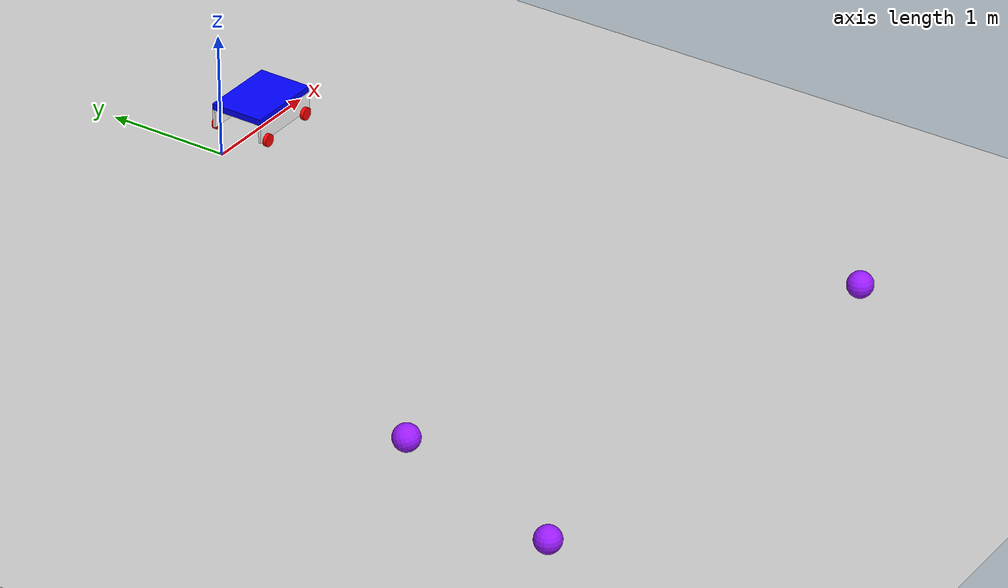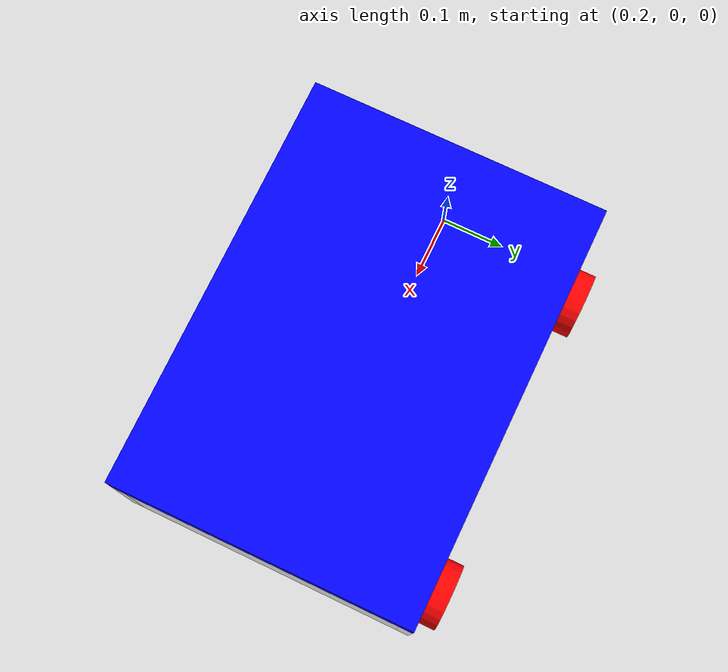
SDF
<sdf version="1.8">
 <world name="assess">
  <scene><ambient>1 1 1 1</ambient><background>0.8 0.8 0.8 1</background><shadows>1</shadows></scene>
  <light name="sun" type="directional">
   <cast_shadows>0</cast_shadows>
   <pose>0 4 2 0 -0 0</pose>
   <diffuse>0.8 0.8 0.8 1</diffuse>
   <specular>0.2 0.2 0.2 1</specular>
   <attenuation>
    <range>1000</range>
    <constant>0.90000000000000002</constant>
    <linear>0.01</linear>
    <quadratic>0.001</quadratic>
   </attenuation>
   <direction>-0.5 0.1 -0.9</direction>
   <spot><inner_angle>0</inner_angle><outer_angle>0</outer_angle><falloff>0</falloff></spot>
  </light>
  <gravity>0 0 -9.8</gravity>
  <magnetic_field>6e-06 2.3e-05 -4.2e-05</magnetic_field>
  <atmosphere type="adiabatic"/>
  <physics type="ode">
   <max_step_size>0.001</max_step_size>
   <real_time_factor>1</real_time_factor>
   <real_time_update_rate>1000</real_time_update_rate>
  </physics>
  <model name="ground_plane">
   <static>1</static>
   <link name="link">
    <collision name="collision">
     <geometry><plane><normal>0 0 1</normal><size>100 100</size></plane></geometry>
    </collision>
    <visual name="visual">
     <geometry><plane><normal>0 0 1</normal><size>100 100</size></plane></geometry>
     <material>
      <ambient>0.8 0.8 0.8 1</ambient>
      <diffuse>0.8 0.8 0.8 1</diffuse>
      <specular>0.8 0.8 0.8 1</specular>
     </material>
    </visual>
   </link>
  </model>
  <model name="sphere">
   <pose>0.932485 -4.91872 0.1 0 -0 0</pose>
   <link name="sphere_link">
    <inertial>
     <inertia>
      <ixx>0.0040000000000000001</ixx>
      <ixy>0</ixy>
      <ixz>0</ixz>
      <iyy>0.0040000000000000001</iyy>
      <iyz>0</iyz>
      <izz>0.0040000000000000001</izz>
     </inertia>
     <mass>1</mass>
    </inertial>
    <collision name="sphere_collision">
     <geometry><sphere><radius>0.10000000000000001</radius></sphere></geometry>
    </collision>
    <visual name="sphere_visual">
     <geometry><sphere><radius>0.10000000000000001</radius></sphere></geometry>
     <material>
      <ambient>0.6 0.1 1 1</ambient>
      <diffuse>0.6 0.1 1 1</diffuse>
      <specular>0.6 0.1 1 1</specular>
     </material>
    </visual>
   </link>
  </model>
  <model name="sphere_0">
   <pose>-2.91501 -4.80288 0.099999 0 -0 0</pose>
   <link name="sphere_link">
    <inertial>
     <inertia>
      <ixx>0.0040000000000000001</ixx>
      <ixy>0</ixy>
      <ixz>0</ixz>
      <iyy>0.0040000000000000001</iyy>
      <iyz>0</iyz>
      <izz>0.0040000000000000001</izz>
     </inertia>
     <mass>1</mass>
    </inertial>
    <collision name="sphere_collision">
     <geometry><sphere><radius>0.10000000000000001</radius></sphere></geometry>
    </collision>
    <visual name="sphere_visual">
     <geometry><sphere><radius>0.10000000000000001</radius></sphere></geometry>
     <material>
      <ambient>0.6 0.1 1 1</ambient>
      <diffuse>0.6 0.1 1 1</diffuse>
      <specular>0.6 0.1 1 1</specular>
     </material>
    </visual>
   </link>
  </model>
  <model name="sphere_1">
   <pose>-2.90308 -3.67776 0.469999 -0.354352 0 0</pose>
   <link name="sphere_link">
    <inertial>
     <inertia>
      <ixx>0.0040000000000000001</ixx>
      <ixy>0</ixy>
      <ixz>0</ixz>
      <iyy>0.0040000000000000001</iyy>
      <iyz>0</iyz>
      <izz>0.0040000000000000001</izz>
     </inertia>
     <mass>1</mass>
    </inertial>
    <collision name="sphere_collision">
     <geometry><sphere><radius>0.10000000000000001</radius></sphere></geometry>
    </collision>
    <visual name="sphere_visual">
     <geometry><sphere><radius>0.10000000000000001</radius></sphere></geometry>
     <material>
      <ambient>0.6 0.1 1 1</ambient>
      <diffuse>0.6 0.1 1 1</diffuse>
      <specular>0.6 0.1 1 1</specular>
     </material>
    </visual>
   </link>
  </model>
  <model name="vehicle_blue" canonical_link="chassis">
   <pose relative_to="world">0 0 0 0 0 0</pose>
   <link name="chassis">
    <pose relative_to="__model__">0.5 0 0.25 0 0 0</pose>
    <inertial>
     <mass>1.14395</mass>
     <inertia>
      <ixx>0.095329</ixx>
      <ixy>0</ixy>
      <ixz>0</ixz>
      <iyy>0.381317</iyy>
      <iyz>0</iyz>
      <izz>0.476646</izz>
     </inertia>
    </inertial>
    <visual name="visual">
     <geometry><box><size>0.62 0.44 0.05</size></box></geometry>
     <material>
      <ambient>0.0 0.0 1.0 1</ambient>
      <diffuse>0.0 0.0 1.0 1</diffuse>
      <specular>0.0 0.0 1.0 1</specular>
     </material>
    </visual>
    <collision name="collision"><geometry><box><size>0.62 0.44 0.05</size></box></geometry></collision>
   </link>
   <link name="left_side">
    <pose relative_to="chassis">0 -0.21 -0.10 0 0 0</pose>
    <inertial>
     <mass>1.14395</mass>
     <inertia>
      <ixx>0.095329</ixx>
      <ixy>0</ixy>
      <ixz>0</ixz>
      <iyy>0.381317</iyy>
      <iyz>0</iyz>
      <izz>0.476646</izz>
     </inertia>
    </inertial>
    <visual name="visual">
     <geometry><box><size>0.62 0.02 0.15</size></box></geometry>
     <material>
      <ambient>1.0 1.0 1.0 1</ambient>
      <diffuse>1.0 1.0 1.0 1</diffuse>
      <specular>1.0 1.0 1.0 1</specular>
     </material>
    </visual>
    <collision name="collision"><geometry><box><size>0.62 0.02 0.15</size></box></geometry></collision>
   </link>
   <link name="right_side">
    <pose relative_to="chassis">0 0.21 -0.10 0 0 0</pose>
    <inertial>
     <mass>1.14395</mass>
     <inertia>
      <ixx>0.095329</ixx>
      <ixy>0</ixy>
      <ixz>0</ixz>
      <iyy>0.381317</iyy>
      <iyz>0</iyz>
      <izz>0.476646</izz>
     </inertia>
    </inertial>
    <visual name="visual">
     <geometry><box><size>0.62 0.02 0.15</size></box></geometry>
     <material>
      <ambient>1.0 1.0 1.0 1</ambient>
      <diffuse>1.0 1.0 1.0 1</diffuse>
      <specular>1.0 1.0 1.0 1</specular>
     </material>
    </visual>
    <collision name="collision"><geometry><box><size>0.62 0.02 0.15</size></box></geometry></collision>
   </link>
   <link name="back_side">
    <pose relative_to="chassis">0.3 0 -0.10 0 0 0</pose>
    <inertial>
     <mass>1.14395</mass>
     <inertia>
      <ixx>0.095329</ixx>
      <ixy>0</ixy>
      <ixz>0</ixz>
      <iyy>0.381317</iyy>
      <iyz>0</iyz>
      <izz>0.476646</izz>
     </inertia>
    </inertial>
    <visual name="visual">
     <geometry><box><size>0.02 0.4 0.15</size></box></geometry>
     <material>
      <ambient>1.0 1.0 1.0 1</ambient>
      <diffuse>1.0 1.0 1.0 1</diffuse>
      <specular>1.0 1.0 1.0 1</specular>
     </material>
    </visual>
    <collision name="collision"><geometry><box><size>0.02 0.4 0.15</size></box></geometry></collision>
   </link>
   <link name="leftb_wheel">
    <pose relative_to="left_side">-0.2375 -0.025 -0.075 -1.5707 0 0</pose>
    <inertial>
     <mass>1</mass>
     <inertia><ixx>0.043333</ixx><ixy>0</ixy><ixz>0</ixz><iyy>0.043333</iyy><iyz>0</iyz><izz>0.08</izz></inertia>
    </inertial>
    <visual name="visual">
     <geometry><cylinder><radius>0.05</radius><length>0.03</length></cylinder></geometry>
     <material>
      <ambient>1.0 0.0 0.0 1</ambient>
      <diffuse>1.0 0.0 0.0 1</diffuse>
      <specular>1.0 0.0 0.0 1</specular>
     </material>
    </visual>
    <collision name="collision">
     <geometry><cylinder><radius>0.05</radius><length>0.03</length></cylinder></geometry>
    </collision>
   </link>
   <link name="leftf_wheel">
    <pose relative_to="left_side">0.2375 -0.025 -0.075 -1.5707 0 0</pose>
    <inertial>
     <mass>1</mass>
     <inertia><ixx>0.043333</ixx><ixy>0</ixy><ixz>0</ixz><iyy>0.043333</iyy><iyz>0</iyz><izz>0.08</izz></inertia>
    </inertial>
    <visual name="visual">
     <geometry><cylinder><radius>0.05</radius><length>0.03</length></cylinder></geometry>
     <material>
      <ambient>1.0 0.0 0.0 1</ambient>
      <diffuse>1.0 0.0 0.0 1</diffuse>
      <specular>1.0 0.0 0.0 1</specular>
     </material>
    </visual>
    <collision name="collision">
     <geometry><cylinder><radius>0.05</radius><length>0.03</length></cylinder></geometry>
    </collision>
   </link>
   <link name="rightb_wheel">
    <pose relative_to="right_side">-0.2375 0.025 -0.075 -1.5707 0 0</pose>
    <inertial>
     <mass>1</mass>
     <inertia><ixx>0.043333</ixx><ixy>0</ixy><ixz>0</ixz><iyy>0.043333</iyy><iyz>0</iyz><izz>0.08</izz></inertia>
    </inertial>
    <visual name="visual">
     <geometry><cylinder><radius>0.05</radius><length>0.03</length></cylinder></geometry>
     <material>
      <ambient>1.0 0.0 0.0 1</ambient>
      <diffuse>1.0 0.0 0.0 1</diffuse>
      <specular>1.0 0.0 0.0 1</specular>
     </material>
    </visual>
    <collision name="collision">
     <geometry><cylinder><radius>0.05</radius><length>0.03</length></cylinder></geometry>
    </collision>
   </link>
   <link name="rightf_wheel">
    <pose relative_to="right_side">0.2375 0.025 -0.075 -1.5707 0 0</pose>
    <inertial>
     <mass>1</mass>
     <inertia><ixx>0.043333</ixx><ixy>0</ixy><ixz>0</ixz><iyy>0.043333</iyy><iyz>0</iyz><izz>0.08</izz></inertia>
    </inertial>
    <visual name="visual">
     <geometry><cylinder><radius>0.05</radius><length>0.03</length></cylinder></geometry>
     <material>
      <ambient>1.0 0.0 0.0 1</ambient>
      <diffuse>1.0 0.0 0.0 1</diffuse>
      <specular>1.0 0.0 0.0 1</specular>
     </material>
    </visual>
    <collision name="collision">
     <geometry><cylinder><radius>0.05</radius><length>0.03</length></cylinder></geometry>
    </collision>
   </link>
   <joint name="rightb_wheel_joint" type="revolute">
    <pose relative_to="rightb_wheel"/>
    <parent>right_side</parent>
    <child>rightb_wheel</child>
    <axis>
     <xyz expressed_in="__model__">0 1 0</xyz>
     <limit><lower>-1.79769e+308</lower><upper>1.79769e+308</upper></limit>
    </axis>
   </joint>
   <joint name="rightf_wheel_joint" type="revolute">
    <pose relative_to="rightf_wheel"/>
    <parent>right_side</parent>
    <child>rightf_wheel</child>
    <axis>
     <xyz expressed_in="__model__">0 1 0</xyz>
     <limit><lower>-1.79769e+308</lower><upper>1.79769e+308</upper></limit>
    </axis>
   </joint>
   <joint name="leftb_wheel_joint" type="revolute">
    <pose relative_to="leftb_wheel"/>
    <parent>left_side</parent>
    <child>leftb_wheel</child>
    <axis>
     <xyz expressed_in="__model__">0 1 0</xyz>
     <limit><lower>-1.79769e+308</lower><upper>1.79769e+308</upper></limit>
    </axis>
   </joint>
   <joint name="leftf_wheel_joint" type="revolute">
    <pose relative_to="leftf_wheel"/>
    <parent>left_side</parent>
    <child>leftf_wheel</child>
    <axis>
     <xyz expressed_in="__model__">0 1 0</xyz>
     <limit><lower>-1.79769e+308</lower><upper>1.79769e+308</upper></limit>
    </axis>
   </joint>
   <joint name="right_side_joint" type="fixed">
    <pose relative_to="right_side"/>
    <parent>chassis</parent>
    <child>right_side</child>
    <axis>
     <xyz expressed_in="__model__">0 1 0</xyz>
     <limit><lower>-1.79769e+308</lower><upper>1.79769e+308</upper></limit>
    </axis>
   </joint>
   <joint name="left_side_joint" type="fixed">
    <pose relative_to="left_side"/>
    <parent>chassis</parent>
    <child>left_side</child>
    <axis>
     <xyz expressed_in="__model__">0 1 0</xyz>
     <limit><lower>-1.79769e+308</lower><upper>1.79769e+308</upper></limit>
    </axis>
   </joint>
   <joint name="back_side_joint" type="fixed">
    <pose relative_to="back_side"/>
    <parent>chassis</parent>
    <child>back_side</child>
    <axis>
     <xyz expressed_in="__model__">0 1 0</xyz>
     <limit><lower>-1.79769e+308</lower><upper>1.79769e+308</upper></limit>
    </axis>
   </joint>
   <plugin filename="libignition-gazebo-diff-drive-system.so" name="ignition::gazebo::systems::DiffDrive">
    <left_joint>leftb_wheel_joint, leftf_wheel_joint</left_joint>
    <right_joint>rightb_wheel_joint, rightf_wheel_joint</right_joint>
    <wheel_separation>0.44</wheel_separation>
    <wheel_radius>0.05</wheel_radius>
    <odom_publish_frequency>1</odom_publish_frequency>
    <topic>cmd_vel</topic>
   </plugin>
  </model>
 </world>
</sdf>
